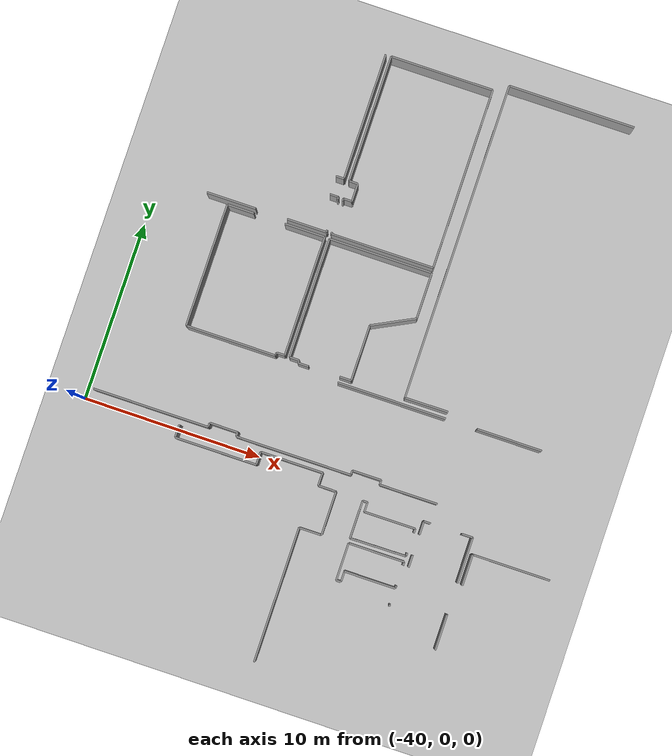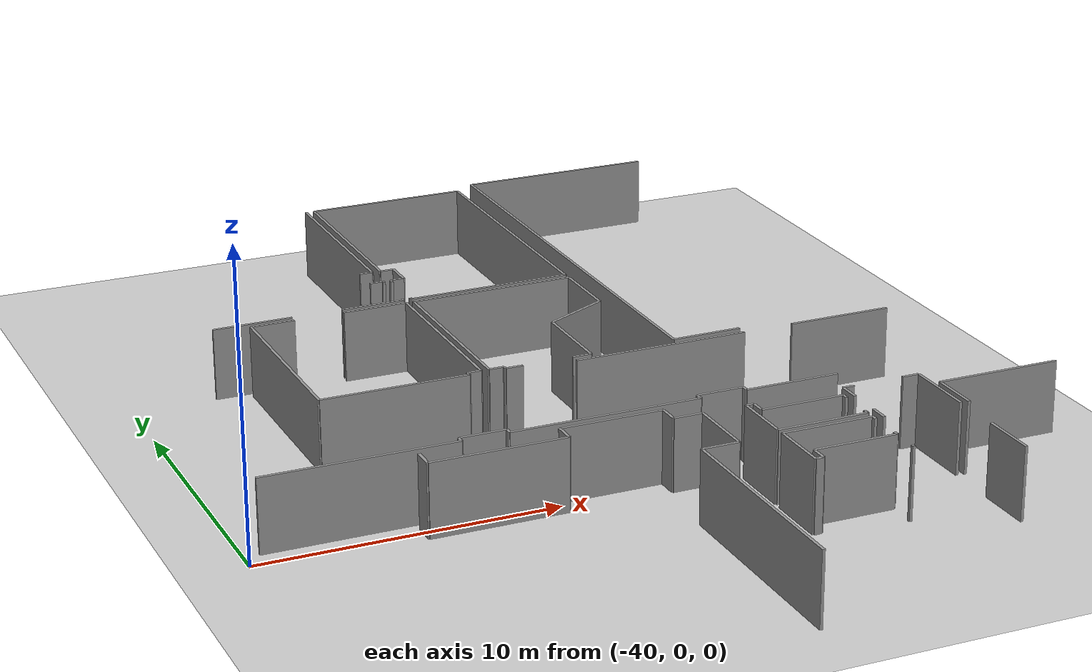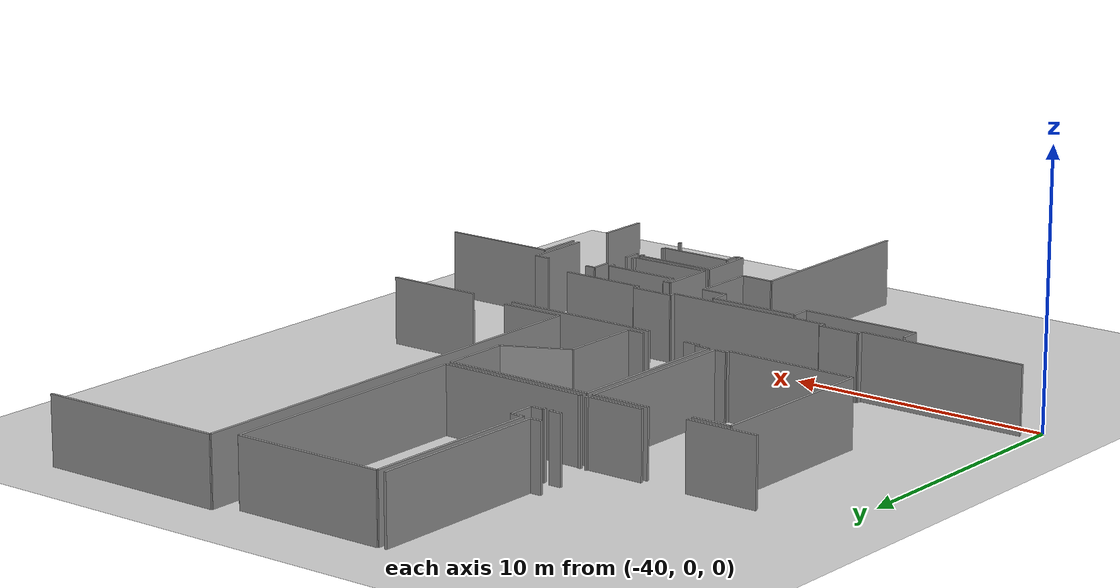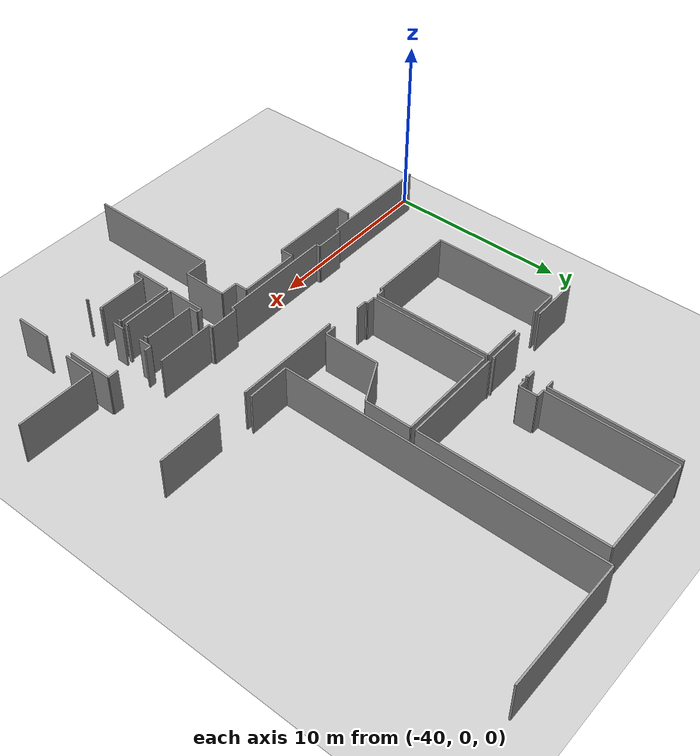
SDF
<sdf version="1.6">
 <world name="default">
  <model name="ground_plane">
   <static>1</static>
   <link name="link">
    <collision name="collision">
     <geometry><plane><normal>0 0 1</normal><size>100 100</size></plane></geometry>
     <surface><friction><ode><mu>100</mu><mu2>50</mu2></ode></friction></surface>
    </collision>
    <visual name="visual">
     <cast_shadows>0</cast_shadows>
     <geometry><plane><normal>0 0 1</normal><size>100 100</size></plane></geometry>
     <material>
      <script><uri>file://media/materials/scripts/gazebo.material</uri><name>Gazebo/Grey</name></script>
     </material>
    </visual>
   </link>
  </model>
  <model name="50057023">
   <static>1</static>
   <link name="Wall_26">
    <collision name="Wall_26_Collision">
     <geometry><box><size>0.469570441269 0.1 2.5</size></box></geometry>
     <pose>0.234785220635 0 1.25 0 0 0</pose>
    </collision>
    <visual name="Wall_26_Visual">
     <pose>0.234785220635 0 1.25 0 0 0</pose>
     <geometry><box><size>0.469570441269 0.1 2.5</size></box></geometry>
     <material>
      <script><uri>file://media/materials/scripts/gazebo.material</uri><name>Gazebo/Grey</name></script>
      <ambient>1 1 1 1</ambient>
     </material>
    </visual>
    <pose>25.0538960405 -8.60891816293 0 0 0 0.0</pose>
   </link>
   <link name="Wall_27">
    <collision name="Wall_27_Collision">
     <geometry><box><size>0.1259792223 0.1 2.5</size></box></geometry>
     <pose>0.06298961115 0 1.25 0 0 0</pose>
    </collision>
    <visual name="Wall_27_Visual">
     <pose>0.06298961115 0 1.25 0 0 0</pose>
     <geometry><box><size>0.1259792223 0.1 2.5</size></box></geometry>
     <material>
      <script><uri>file://media/materials/scripts/gazebo.material</uri><name>Gazebo/Grey</name></script>
      <ambient>1 1 1 1</ambient>
     </material>
    </visual>
    <pose>25.5234664818 -8.60891816293 0 0 0 -1.57079632679</pose>
   </link>
   <link name="Wall_28">
    <collision name="Wall_28_Collision">
     <geometry><box><size>0.12610596196 0.1 2.5</size></box></geometry>
     <pose>0.0630529809802 0 1.25 0 0 0</pose>
    </collision>
    <visual name="Wall_28_Visual">
     <pose>0.0630529809802 0 1.25 0 0 0</pose>
     <geometry><box><size>0.12610596196 0.1 2.5</size></box></geometry>
     <material>
      <script><uri>file://media/materials/scripts/gazebo.material</uri><name>Gazebo/Grey</name></script>
      <ambient>1 1 1 1</ambient>
     </material>
    </visual>
    <pose>25.5234664818 -10.4807362053 0 0 0 -1.57079632679</pose>
   </link>
   <link name="Wall_29">
    <collision name="Wall_29_Collision">
     <geometry><box><size>2.21654991832 0.1 2.5</size></box></geometry>
     <pose>1.10827495916 0 1.25 0 0 0</pose>
    </collision>
    <visual name="Wall_29_Visual">
     <pose>1.10827495916 0 1.25 0 0 0</pose>
     <geometry><box><size>2.21654991832 0.1 2.5</size></box></geometry>
     <material>
      <script><uri>file://media/materials/scripts/gazebo.material</uri><name>Gazebo/Grey</name></script>
      <ambient>1 1 1 1</ambient>
     </material>
    </visual>
    <pose>25.5234664818 -10.6068421673 0 0 0 3.14159265359</pose>
   </link>
   <link name="Wall_30">
    <collision name="Wall_30_Collision">
     <geometry><box><size>2.7690080974 0.1 2.5</size></box></geometry>
     <pose>1.3845040487 0 1.25 0 0 0</pose>
    </collision>
    <visual name="Wall_30_Visual">
     <pose>1.3845040487 0 1.25 0 0 0</pose>
     <geometry><box><size>2.7690080974 0.1 2.5</size></box></geometry>
     <material>
      <script><uri>file://media/materials/scripts/gazebo.material</uri><name>Gazebo/Grey</name></script>
      <ambient>1 1 1 1</ambient>
     </material>
    </visual>
    <pose>21.5349693734 -10.6068421673 0 0 0 3.14159265359</pose>
   </link>
   <link name="Wall_45">
    <collision name="Wall_45_Collision">
     <geometry><box><size>7.07676241003 0.1 2.5</size></box></geometry>
     <pose>3.53838120502 0 1.25 0 0 0</pose>
    </collision>
    <visual name="Wall_45_Visual">
     <pose>3.53838120502 0 1.25 0 0 0</pose>
     <geometry><box><size>7.07676241003 0.1 2.5</size></box></geometry>
     <material>
      <script><uri>file://media/materials/scripts/gazebo.material</uri><name>Gazebo/Grey</name></script>
      <ambient>1 1 1 1</ambient>
     </material>
    </visual>
    <pose>25.4986255084 -0.502902971918 0 0 0 -1.57079632679</pose>
   </link>
   <link name="Wall_46">
    <collision name="Wall_46_Collision">
     <geometry><box><size>0.453221025096 0.1 2.5</size></box></geometry>
     <pose>0.226610512548 0 1.25 0 0 0</pose>
    </collision>
    <visual name="Wall_46_Visual">
     <pose>0.226610512548 0 1.25 0 0 0</pose>
     <geometry><box><size>0.453221025096 0.1 2.5</size></box></geometry>
     <material>
      <script><uri>file://media/materials/scripts/gazebo.material</uri><name>Gazebo/Grey</name></script>
      <ambient>1 1 1 1</ambient>
     </material>
    </visual>
    <pose>25.4986255084 -7.57966538195 0 0 0 3.14159265359</pose>
   </link>
   <link name="Wall_48">
    <collision name="Wall_48_Collision">
     <geometry><box><size>7.09513966077 0.1 2.5</size></box></geometry>
     <pose>3.54756983038 0 1.25 0 0 0</pose>
    </collision>
    <visual name="Wall_48_Visual">
     <pose>3.54756983038 0 1.25 0 0 0</pose>
     <geometry><box><size>7.09513966077 0.1 2.5</size></box></geometry>
     <material>
      <script><uri>file://media/materials/scripts/gazebo.material</uri><name>Gazebo/Grey</name></script>
      <ambient>1 1 1 1</ambient>
     </material>
    </visual>
    <pose>25.8064761432 -7.5951276205 0 0 0 1.57079632679</pose>
   </link>
   <link name="Wall_49">
    <collision name="Wall_49_Collision">
     <geometry><box><size>5.75309339826 0.1 2.5</size></box></geometry>
     <pose>2.87654669913 0 1.25 0 0 0</pose>
    </collision>
    <visual name="Wall_49_Visual">
     <pose>2.87654669913 0 1.25 0 0 0</pose>
     <geometry><box><size>5.75309339826 0.1 2.5</size></box></geometry>
     <material>
      <script><uri>file://media/materials/scripts/gazebo.material</uri><name>Gazebo/Grey</name></script>
      <ambient>1 1 1 1</ambient>
     </material>
    </visual>
    <pose>25.8064761432 -0.499987959732 0 0 0 0.0</pose>
   </link>
   <link name="Wall_50">
    <collision name="Wall_50_Collision">
     <geometry><box><size>10.111163356 0.1 2.5</size></box></geometry>
     <pose>5.05558167801 0 1.25 0 0 0</pose>
    </collision>
    <visual name="Wall_50_Visual">
     <pose>5.05558167801 0 1.25 0 0 0</pose>
     <geometry><box><size>10.111163356 0.1 2.5</size></box></geometry>
     <material>
      <script><uri>file://media/materials/scripts/gazebo.material</uri><name>Gazebo/Grey</name></script>
      <ambient>1 1 1 1</ambient>
     </material>
    </visual>
    <pose>31.5595695414 -0.499987959732 0 0 0 -1.57079632679</pose>
   </link>
   <link name="Wall_51">
    <collision name="Wall_51_Collision">
     <geometry><box><size>5.74840403083 0.1 2.5</size></box></geometry>
     <pose>2.87420201541 0 1.25 0 0 0</pose>
    </collision>
    <visual name="Wall_51_Visual">
     <pose>2.87420201541 0 1.25 0 0 0</pose>
     <geometry><box><size>5.74840403083 0.1 2.5</size></box></geometry>
     <material>
      <script><uri>file://media/materials/scripts/gazebo.material</uri><name>Gazebo/Grey</name></script>
      <ambient>1 1 1 1</ambient>
     </material>
    </visual>
    <pose>31.5595695414 -10.6111513157 0 0 0 3.14159265359</pose>
   </link>
   <link name="Wall_52">
    <collision name="Wall_52_Collision">
     <geometry><box><size>0.100377810927 0.1 2.5</size></box></geometry>
     <pose>0.0501889054636 0 1.25 0 0 0</pose>
    </collision>
    <visual name="Wall_52_Visual">
     <pose>0.0501889054636 0 1.25 0 0 0</pose>
     <geometry><box><size>0.100377810927 0.1 2.5</size></box></geometry>
     <material>
      <script><uri>file://media/materials/scripts/gazebo.material</uri><name>Gazebo/Grey</name></script>
      <ambient>1 1 1 1</ambient>
     </material>
    </visual>
    <pose>25.8111655106 -10.6111513157 0 0 0 1.57079632679</pose>
   </link>
   <link name="Wall_53">
    <collision name="Wall_53_Collision">
     <geometry><box><size>0.141694940173 0.1 2.5</size></box></geometry>
     <pose>0.0708474700863 0 1.25 0 0 0</pose>
    </collision>
    <visual name="Wall_53_Visual">
     <pose>0.0708474700863 0 1.25 0 0 0</pose>
     <geometry><box><size>0.141694940173 0.1 2.5</size></box></geometry>
     <material>
      <script><uri>file://media/materials/scripts/gazebo.material</uri><name>Gazebo/Grey</name></script>
      <ambient>1 1 1 1</ambient>
     </material>
    </visual>
    <pose>25.8111655106 -8.74452959941 0 0 0 1.57079632679</pose>
   </link>
   <link name="Wall_54">
    <collision name="Wall_54_Collision">
     <geometry><box><size>0.479836353751 0.1 2.5</size></box></geometry>
     <pose>0.239918176875 0 1.25 0 0 0</pose>
    </collision>
    <visual name="Wall_54_Visual">
     <pose>0.239918176875 0 1.25 0 0 0</pose>
     <geometry><box><size>0.479836353751 0.1 2.5</size></box></geometry>
     <material>
      <script><uri>file://media/materials/scripts/gazebo.material</uri><name>Gazebo/Grey</name></script>
      <ambient>1 1 1 1</ambient>
     </material>
    </visual>
    <pose>25.8111655106 -8.60283465924 0 0 0 0.0</pose>
   </link>
   <link name="Wall_55">
    <collision name="Wall_55_Collision">
     <geometry><box><size>0.999975919465 0.1 2.5</size></box></geometry>
     <pose>0.499987959732 0 1.25 0 0 0</pose>
    </collision>
    <visual name="Wall_55_Visual">
     <pose>0.499987959732 0 1.25 0 0 0</pose>
     <geometry><box><size>0.999975919465 0.1 2.5</size></box></geometry>
     <material>
      <script><uri>file://media/materials/scripts/gazebo.material</uri><name>Gazebo/Grey</name></script>
      <ambient>1 1 1 1</ambient>
     </material>
    </visual>
    <pose>26.2910018643 -8.60283465924 0 0 0 1.57079632679</pose>
   </link>
   <link name="Wall_56">
    <collision name="Wall_56_Collision">
     <geometry><box><size>0.484587396339 0.1 2.5</size></box></geometry>
     <pose>0.242293698169 0 1.25 0 0 0</pose>
    </collision>
    <visual name="Wall_56_Visual">
     <pose>0.242293698169 0 1.25 0 0 0</pose>
     <geometry><box><size>0.484587396339 0.1 2.5</size></box></geometry>
     <material>
      <script><uri>file://media/materials/scripts/gazebo.material</uri><name>Gazebo/Grey</name></script>
      <ambient>1 1 1 1</ambient>
     </material>
    </visual>
    <pose>26.2910018643 -7.60285873978 0 0 0 3.12563795204</pose>
   </link>
   <link name="Wall_57">
    <collision name="Wall_57_Collision">
     <geometry><box><size>6.86472695841 0.1 2.5</size></box></geometry>
     <pose>3.43236347921 0 1.25 0 0 0</pose>
    </collision>
    <visual name="Wall_57_Visual">
     <pose>3.43236347921 0 1.25 0 0 0</pose>
     <geometry><box><size>6.86472695841 0.1 2.5</size></box></geometry>
     <material>
      <script><uri>file://media/materials/scripts/gazebo.material</uri><name>Gazebo/Grey</name></script>
      <ambient>1 1 1 1</ambient>
     </material>
    </visual>
    <pose>20.0091506035 -17.7463407092 0 0 0 1.57079632679</pose>
   </link>
   <link name="Wall_58">
    <collision name="Wall_58_Collision">
     <geometry><box><size>1.51808765061 0.1 2.5</size></box></geometry>
     <pose>0.759043825307 0 1.25 0 0 0</pose>
    </collision>
    <visual name="Wall_58_Visual">
     <pose>0.759043825307 0 1.25 0 0 0</pose>
     <geometry><box><size>1.51808765061 0.1 2.5</size></box></geometry>
     <material>
      <script><uri>file://media/materials/scripts/gazebo.material</uri><name>Gazebo/Grey</name></script>
      <ambient>1 1 1 1</ambient>
     </material>
    </visual>
    <pose>20.0091506035 -10.8816137507 0 0 0 0.0</pose>
   </link>
   <link name="Wall_59">
    <collision name="Wall_59_Collision">
     <geometry><box><size>2.25203702319 0.1 2.5</size></box></geometry>
     <pose>1.12601851159 0 1.25 0 0 0</pose>
    </collision>
    <visual name="Wall_59_Visual">
     <pose>1.12601851159 0 1.25 0 0 0</pose>
     <geometry><box><size>2.25203702319 0.1 2.5</size></box></geometry>
     <material>
      <script><uri>file://media/materials/scripts/gazebo.material</uri><name>Gazebo/Grey</name></script>
      <ambient>1 1 1 1</ambient>
     </material>
    </visual>
    <pose>23.2714294586 -10.8816137507 0 0 0 0.0</pose>
   </link>
   <link name="Wall_60">
    <collision name="Wall_60_Collision">
     <geometry><box><size>6.69869800347 0.1 2.5</size></box></geometry>
     <pose>3.34934900174 0 1.25 0 0 0</pose>
    </collision>
    <visual name="Wall_60_Visual">
     <pose>3.34934900174 0 1.25 0 0 0</pose>
     <geometry><box><size>6.69869800347 0.1 2.5</size></box></geometry>
     <material>
      <script><uri>file://media/materials/scripts/gazebo.material</uri><name>Gazebo/Grey</name></script>
      <ambient>1 1 1 1</ambient>
     </material>
    </visual>
    <pose>25.5234664818 -10.8816137507 0 0 0 -1.57079632679</pose>
   </link>
   <link name="Wall_61">
    <collision name="Wall_61_Collision">
     <geometry><box><size>0.469570441269 0.1 2.5</size></box></geometry>
     <pose>0.234785220635 0 1.25 0 0 0</pose>
    </collision>
    <visual name="Wall_61_Visual">
     <pose>0.234785220635 0 1.25 0 0 0</pose>
     <geometry><box><size>0.469570441269 0.1 2.5</size></box></geometry>
     <material>
      <script><uri>file://media/materials/scripts/gazebo.material</uri><name>Gazebo/Grey</name></script>
      <ambient>1 1 1 1</ambient>
     </material>
    </visual>
    <pose>25.5234664818 -17.5803117542 0 0 0 3.14159265359</pose>
   </link>
   <link name="Wall_62">
    <collision name="Wall_62_Collision">
     <geometry><box><size>0.172619417276 0.1 2.5</size></box></geometry>
     <pose>0.0863097086382 0 1.25 0 0 0</pose>
    </collision>
    <visual name="Wall_62_Visual">
     <pose>0.0863097086382 0 1.25 0 0 0</pose>
     <geometry><box><size>0.172619417276 0.1 2.5</size></box></geometry>
     <material>
      <script><uri>file://media/materials/scripts/gazebo.material</uri><name>Gazebo/Grey</name></script>
      <ambient>1 1 1 1</ambient>
     </material>
    </visual>
    <pose>25.0538960405 -17.5803117542 0 0 0 -1.57079632679</pose>
   </link>
   <link name="Wall_63">
    <collision name="Wall_63_Collision">
     <geometry><box><size>5.04474974195 0.1 2.5</size></box></geometry>
     <pose>2.52237487097 0 1.25 0 0 0</pose>
    </collision>
    <visual name="Wall_63_Visual">
     <pose>2.52237487097 0 1.25 0 0 0</pose>
     <geometry><box><size>5.04474974195 0.1 2.5</size></box></geometry>
     <material>
      <script><uri>file://media/materials/scripts/gazebo.material</uri><name>Gazebo/Grey</name></script>
      <ambient>1 1 1 1</ambient>
     </material>
    </visual>
    <pose>25.0538960405 -17.7529311715 0 0 0 3.14028625297</pose>
   </link>
   <link name="Wall_64">
    <collision name="Wall_64_Collision">
     <geometry><box><size>6.70706282105 0.1 2.5</size></box></geometry>
     <pose>3.35353141052 0 1.25 0 0 0</pose>
    </collision>
    <visual name="Wall_64_Visual">
     <pose>3.35353141052 0 1.25 0 0 0</pose>
     <geometry><box><size>6.70706282105 0.1 2.5</size></box></geometry>
     <material>
      <script><uri>file://media/materials/scripts/gazebo.material</uri><name>Gazebo/Grey</name></script>
      <ambient>1 1 1 1</ambient>
     </material>
    </visual>
    <pose>25.7982380652 -17.5972948687 0 0 0 1.57079632679</pose>
   </link>
   <link name="Wall_65">
    <collision name="Wall_65_Collision">
     <geometry><box><size>5.78008894589 0.1 2.5</size></box></geometry>
     <pose>2.89004447295 0 1.25 0 0 0</pose>
    </collision>
    <visual name="Wall_65_Visual">
     <pose>2.89004447295 0 1.25 0 0 0</pose>
     <geometry><box><size>5.78008894589 0.1 2.5</size></box></geometry>
     <material>
      <script><uri>file://media/materials/scripts/gazebo.material</uri><name>Gazebo/Grey</name></script>
      <ambient>1 1 1 1</ambient>
     </material>
    </visual>
    <pose>25.7982380652 -10.8902320476 0 0 0 0.0</pose>
   </link>
   <link name="Wall_66">
    <collision name="Wall_66_Collision">
     <geometry><box><size>2.58371471409 0.1 2.5</size></box></geometry>
     <pose>1.29185735705 0 1.25 0 0 0</pose>
    </collision>
    <visual name="Wall_66_Visual">
     <pose>1.29185735705 0 1.25 0 0 0</pose>
     <geometry><box><size>2.58371471409 0.1 2.5</size></box></geometry>
     <material>
      <script><uri>file://media/materials/scripts/gazebo.material</uri><name>Gazebo/Grey</name></script>
      <ambient>1 1 1 1</ambient>
     </material>
    </visual>
    <pose>31.5783270111 -10.8902320476 0 0 0 -1.57079632679</pose>
   </link>
   <link name="Wall_67">
    <collision name="Wall_67_Collision">
     <geometry><box><size>2.52998225674 0.1 2.5</size></box></geometry>
     <pose>1.26499112837 0 1.25 0 0 0</pose>
    </collision>
    <visual name="Wall_67_Visual">
     <pose>1.26499112837 0 1.25 0 0 0</pose>
     <geometry><box><size>2.52998225674 0.1 2.5</size></box></geometry>
     <material>
      <script><uri>file://media/materials/scripts/gazebo.material</uri><name>Gazebo/Grey</name></script>
      <ambient>1 1 1 1</ambient>
     </material>
    </visual>
    <pose>31.5783270111 -13.4739467617 0 0 0 -2.67330756551</pose>
   </link>
   <link name="Wall_68">
    <collision name="Wall_68_Collision">
     <geometry><box><size>3.12324544783 0.1 2.5</size></box></geometry>
     <pose>1.56162272391 0 1.25 0 0 0</pose>
    </collision>
    <visual name="Wall_68_Visual">
     <pose>1.56162272391 0 1.25 0 0 0</pose>
     <geometry><box><size>3.12324544783 0.1 2.5</size></box></geometry>
     <material>
      <script><uri>file://media/materials/scripts/gazebo.material</uri><name>Gazebo/Grey</name></script>
      <ambient>1 1 1 1</ambient>
     </material>
    </visual>
    <pose>29.3207134429 -14.6158711007 0 0 0 -1.57079632679</pose>
   </link>
   <link name="Wall_69">
    <collision name="Wall_69_Collision">
     <geometry><box><size>0.652202291707 0.1 2.5</size></box></geometry>
     <pose>0.326101145853 0 1.25 0 0 0</pose>
    </collision>
    <visual name="Wall_69_Visual">
     <pose>0.326101145853 0 1.25 0 0 0</pose>
     <geometry><box><size>0.652202291707 0.1 2.5</size></box></geometry>
     <material>
      <script><uri>file://media/materials/scripts/gazebo.material</uri><name>Gazebo/Grey</name></script>
      <ambient>1 1 1 1</ambient>
     </material>
    </visual>
    <pose>29.3207134429 -17.7391165485 0 0 0 3.14159265359</pose>
   </link>
   <link name="Wall_70">
    <collision name="Wall_70_Collision">
     <geometry><box><size>0.594282266967 0.1 2.5</size></box></geometry>
     <pose>0.297141133483 0 1.25 0 0 0</pose>
    </collision>
    <visual name="Wall_70_Visual">
     <pose>0.297141133483 0 1.25 0 0 0</pose>
     <geometry><box><size>0.594282266967 0.1 2.5</size></box></geometry>
     <material>
      <script><uri>file://media/materials/scripts/gazebo.material</uri><name>Gazebo/Grey</name></script>
      <ambient>1 1 1 1</ambient>
     </material>
    </visual>
    <pose>26.9149412118 -17.7391165485 0 0 0 3.14159265359</pose>
   </link>
   <link name="Wall_71">
    <collision name="Wall_71_Collision">
     <geometry><box><size>0.144990171339 0.1 2.5</size></box></geometry>
     <pose>0.0724950856697 0 1.25 0 0 0</pose>
    </collision>
    <visual name="Wall_71_Visual">
     <pose>0.0724950856697 0 1.25 0 0 0</pose>
     <geometry><box><size>0.144990171339 0.1 2.5</size></box></geometry>
     <material>
      <script><uri>file://media/materials/scripts/gazebo.material</uri><name>Gazebo/Grey</name></script>
      <ambient>1 1 1 1</ambient>
     </material>
    </visual>
    <pose>26.3206589448 -17.7391165485 0 0 0 1.57079632679</pose>
   </link>
   <link name="Wall_72">
    <collision name="Wall_72_Collision">
     <geometry><box><size>0.522430487988 0.1 2.5</size></box></geometry>
     <pose>0.261215243994 0 1.25 0 0 0</pose>
    </collision>
    <visual name="Wall_72_Visual">
     <pose>0.261215243994 0 1.25 0 0 0</pose>
     <geometry><box><size>0.522430487988 0.1 2.5</size></box></geometry>
     <material>
      <script><uri>file://media/materials/scripts/gazebo.material</uri><name>Gazebo/Grey</name></script>
      <ambient>1 1 1 1</ambient>
     </material>
    </visual>
    <pose>26.3206589448 -17.5941263772 0 0 0 -3.13552771097</pose>
   </link>
   <link name="Wall_73">
    <collision name="Wall_73_Collision">
     <geometry><box><size>17.6953913657 0.1 2.5</size></box></geometry>
     <pose>8.84769568287 0 1.25 0 0 0</pose>
    </collision>
    <visual name="Wall_73_Visual">
     <pose>8.84769568287 0 1.25 0 0 0</pose>
     <geometry><box><size>17.6953913657 0.1 2.5</size></box></geometry>
     <material>
      <script><uri>file://media/materials/scripts/gazebo.material</uri><name>Gazebo/Grey</name></script>
      <ambient>1 1 1 1</ambient>
     </material>
    </visual>
    <pose>32.3276118826 -17.6953913657 0 0 0 1.57079632679</pose>
   </link>
   <link name="Wall_74">
    <collision name="Wall_74_Collision">
     <geometry><box><size>7.0832261327 0.1 2.5</size></box></geometry>
     <pose>3.54161306635 0 1.25 0 0 0</pose>
    </collision>
    <visual name="Wall_74_Visual">
     <pose>3.54161306635 0 1.25 0 0 0</pose>
     <geometry><box><size>7.0832261327 0.1 2.5</size></box></geometry>
     <material>
      <script><uri>file://media/materials/scripts/gazebo.material</uri><name>Gazebo/Grey</name></script>
      <ambient>1 1 1 1</ambient>
     </material>
    </visual>
    <pose>32.3276118826 -0.0 0 0 0 0.0</pose>
   </link>
   <link name="Wall_81">
    <collision name="Wall_81_Collision">
     <geometry><box><size>2.43293970809 0.1 2.5</size></box></geometry>
     <pose>1.21646985404 0 1.25 0 0 0</pose>
    </collision>
    <visual name="Wall_81_Visual">
     <pose>1.21646985404 0 1.25 0 0 0</pose>
     <geometry><box><size>2.43293970809 0.1 2.5</size></box></geometry>
     <material>
      <script><uri>file://media/materials/scripts/gazebo.material</uri><name>Gazebo/Grey</name></script>
      <ambient>1 1 1 1</ambient>
     </material>
    </visual>
    <pose>34.760506401 -17.6805628255 0 0 0 -3.13549770927</pose>
   </link>
   <link name="Wall_114">
    <collision name="Wall_114_Collision">
     <geometry><box><size>6.08375717188 0.1 2.5</size></box></geometry>
     <pose>3.04187858594 0 1.25 0 0 0</pose>
    </collision>
    <visual name="Wall_114_Visual">
     <pose>3.04187858594 0 1.25 0 0 0</pose>
     <geometry><box><size>6.08375717188 0.1 2.5</size></box></geometry>
     <material>
      <script><uri>file://media/materials/scripts/gazebo.material</uri><name>Gazebo/Grey</name></script>
      <ambient>1 1 1 1</ambient>
     </material>
    </visual>
    <pose>28.6685111512 -18.0611620252 0 0 0 0.0</pose>
   </link>
   <link name="Wall_115">
    <collision name="Wall_115_Collision">
     <geometry><box><size>3.64008978238 0.1 2.5</size></box></geometry>
     <pose>1.82004489119 0 1.25 0 0 0</pose>
    </collision>
    <visual name="Wall_115_Visual">
     <pose>1.82004489119 0 1.25 0 0 0</pose>
     <geometry><box><size>3.64008978238 0.1 2.5</size></box></geometry>
     <material>
      <script><uri>file://media/materials/scripts/gazebo.material</uri><name>Gazebo/Grey</name></script>
      <ambient>1 1 1 1</ambient>
     </material>
    </visual>
    <pose>36.5229481166 -18.0611620252 0 0 0 0.0</pose>
   </link>
   <link name="Wall_152">
    <collision name="Wall_152_Collision">
     <geometry><box><size>3.23832505935 0.1 2.5</size></box></geometry>
     <pose>1.61916252967 0 1.25 0 0 0</pose>
    </collision>
    <visual name="Wall_152_Visual">
     <pose>1.61916252967 0 1.25 0 0 0</pose>
     <geometry><box><size>3.23832505935 0.1 2.5</size></box></geometry>
     <material>
      <script><uri>file://media/materials/scripts/gazebo.material</uri><name>Gazebo/Grey</name></script>
      <ambient>1 1 1 1</ambient>
     </material>
    </visual>
    <pose>35.7668193035 -22.5217643682 0 0 0 3.14159265359</pose>
   </link>
   <link name="Wall_153">
    <collision name="Wall_153_Collision">
     <geometry><box><size>0.249550391055 0.1 2.5</size></box></geometry>
     <pose>0.124775195528 0 1.25 0 0 0</pose>
    </collision>
    <visual name="Wall_153_Visual">
     <pose>0.124775195528 0 1.25 0 0 0</pose>
     <geometry><box><size>0.249550391055 0.1 2.5</size></box></geometry>
     <material>
      <script><uri>file://media/materials/scripts/gazebo.material</uri><name>Gazebo/Grey</name></script>
      <ambient>1 1 1 1</ambient>
     </material>
    </visual>
    <pose>32.5284942441 -22.5217643682 0 0 0 1.57079632679</pose>
   </link>
   <link name="Wall_154">
    <collision name="Wall_154_Collision">
     <geometry><box><size>1.62188743237 0.1 2.5</size></box></geometry>
     <pose>0.810943716184 0 1.25 0 0 0</pose>
    </collision>
    <visual name="Wall_154_Visual">
     <pose>0.810943716184 0 1.25 0 0 0</pose>
     <geometry><box><size>1.62188743237 0.1 2.5</size></box></geometry>
     <material>
      <script><uri>file://media/materials/scripts/gazebo.material</uri><name>Gazebo/Grey</name></script>
      <ambient>1 1 1 1</ambient>
     </material>
    </visual>
    <pose>32.5284942441 -22.2722139771 0 0 0 3.14159265359</pose>
   </link>
   <link name="Wall_155">
    <collision name="Wall_155_Collision">
     <geometry><box><size>0.246635378869 0.1 2.5</size></box></geometry>
     <pose>0.123317689435 0 1.25 0 0 0</pose>
    </collision>
    <visual name="Wall_155_Visual">
     <pose>0.123317689435 0 1.25 0 0 0</pose>
     <geometry><box><size>0.246635378869 0.1 2.5</size></box></geometry>
     <material>
      <script><uri>file://media/materials/scripts/gazebo.material</uri><name>Gazebo/Grey</name></script>
      <ambient>1 1 1 1</ambient>
     </material>
    </visual>
    <pose>30.9066068117 -22.2722139771 0 0 0 -1.57079632679</pose>
   </link>
   <link name="Wall_156">
    <collision name="Wall_156_Collision">
     <geometry><box><size>6.46207505776 0.1 2.5</size></box></geometry>
     <pose>3.23103752888 0 1.25 0 0 0</pose>
    </collision>
    <visual name="Wall_156_Visual">
     <pose>3.23103752888 0 1.25 0 0 0</pose>
     <geometry><box><size>6.46207505776 0.1 2.5</size></box></geometry>
     <material>
      <script><uri>file://media/materials/scripts/gazebo.material</uri><name>Gazebo/Grey</name></script>
      <ambient>1 1 1 1</ambient>
     </material>
    </visual>
    <pose>30.9066068117 -22.518849356 0 0 0 3.14159265359</pose>
   </link>
   <link name="Wall_157">
    <collision name="Wall_157_Collision">
     <geometry><box><size>0.238017081971 0.1 2.5</size></box></geometry>
     <pose>0.119008540986 0 1.25 0 0 0</pose>
    </collision>
    <visual name="Wall_157_Visual">
     <pose>0.119008540986 0 1.25 0 0 0</pose>
     <geometry><box><size>0.238017081971 0.1 2.5</size></box></geometry>
     <material>
      <script><uri>file://media/materials/scripts/gazebo.material</uri><name>Gazebo/Grey</name></script>
      <ambient>1 1 1 1</ambient>
     </material>
    </visual>
    <pose>24.444531754 -22.518849356 0 0 0 1.57079632679</pose>
   </link>
   <link name="Wall_158">
    <collision name="Wall_158_Collision">
     <geometry><box><size>1.57157178724 0.1 2.5</size></box></geometry>
     <pose>0.785785893622 0 1.25 0 0 0</pose>
    </collision>
    <visual name="Wall_158_Visual">
     <pose>0.785785893622 0 1.25 0 0 0</pose>
     <geometry><box><size>1.57157178724 0.1 2.5</size></box></geometry>
     <material>
      <script><uri>file://media/materials/scripts/gazebo.material</uri><name>Gazebo/Grey</name></script>
      <ambient>1 1 1 1</ambient>
     </material>
    </visual>
    <pose>24.444531754 -22.280832274 0 0 0 3.14159265359</pose>
   </link>
   <link name="Wall_159">
    <collision name="Wall_159_Collision">
     <geometry><box><size>0.240805354497 0.1 2.5</size></box></geometry>
     <pose>0.120402677249 0 1.25 0 0 0</pose>
    </collision>
    <visual name="Wall_159_Visual">
     <pose>0.120402677249 0 1.25 0 0 0</pose>
     <geometry><box><size>0.240805354497 0.1 2.5</size></box></geometry>
     <material>
      <script><uri>file://media/materials/scripts/gazebo.material</uri><name>Gazebo/Grey</name></script>
      <ambient>1 1 1 1</ambient>
     </material>
    </visual>
    <pose>22.8729599667 -22.280832274 0 0 0 -1.57079632679</pose>
   </link>
   <link name="Wall_160">
    <collision name="Wall_160_Collision">
     <geometry><box><size>6.47639663937 0.1 2.5</size></box></geometry>
     <pose>3.23819831969 0 1.25 0 0 0</pose>
    </collision>
    <visual name="Wall_160_Visual">
     <pose>3.23819831969 0 1.25 0 0 0</pose>
     <geometry><box><size>6.47639663937 0.1 2.5</size></box></geometry>
     <material>
      <script><uri>file://media/materials/scripts/gazebo.material</uri><name>Gazebo/Grey</name></script>
      <ambient>1 1 1 1</ambient>
     </material>
    </visual>
    <pose>22.8729599667 -22.5216376285 0 0 0 3.14159265359</pose>
   </link>
   <link name="Wall_228">
    <collision name="Wall_228_Collision">
     <geometry><box><size>0.717473216741 0.1 2.5</size></box></geometry>
     <pose>0.358736608371 0 1.25 0 0 0</pose>
    </collision>
    <visual name="Wall_228_Visual">
     <pose>0.358736608371 0 1.25 0 0 0</pose>
     <geometry><box><size>0.717473216741 0.1 2.5</size></box></geometry>
     <material>
      <script><uri>file://media/materials/scripts/gazebo.material</uri><name>Gazebo/Grey</name></script>
      <ambient>1 1 1 1</ambient>
     </material>
    </visual>
    <pose>21.3641243113 -22.8839863172 0 0 0 -1.57079632679</pose>
   </link>
   <link name="Wall_229">
    <collision name="Wall_229_Collision">
     <geometry><box><size>4.57973762356 0.1 2.5</size></box></geometry>
     <pose>2.28986881178 0 1.25 0 0 0</pose>
    </collision>
    <visual name="Wall_229_Visual">
     <pose>2.28986881178 0 1.25 0 0 0</pose>
     <geometry><box><size>4.57973762356 0.1 2.5</size></box></geometry>
     <material>
      <script><uri>file://media/materials/scripts/gazebo.material</uri><name>Gazebo/Grey</name></script>
      <ambient>1 1 1 1</ambient>
     </material>
    </visual>
    <pose>21.3641243113 -23.6014595339 0 0 0 0.0</pose>
   </link>
   <link name="Wall_230">
    <collision name="Wall_230_Collision">
     <geometry><box><size>0.717473216741 0.1 2.5</size></box></geometry>
     <pose>0.358736608371 0 1.25 0 0 0</pose>
    </collision>
    <visual name="Wall_230_Visual">
     <pose>0.358736608371 0 1.25 0 0 0</pose>
     <geometry><box><size>0.717473216741 0.1 2.5</size></box></geometry>
     <material>
      <script><uri>file://media/materials/scripts/gazebo.material</uri><name>Gazebo/Grey</name></script>
      <ambient>1 1 1 1</ambient>
     </material>
    </visual>
    <pose>25.9438619349 -23.6014595339 0 0 0 1.57079632679</pose>
   </link>
   <link name="Wall_231">
    <collision name="Wall_231_Collision">
     <geometry><box><size>3.49281829715 0.1 2.5</size></box></geometry>
     <pose>1.74640914858 0 1.25 0 0 0</pose>
    </collision>
    <visual name="Wall_231_Visual">
     <pose>1.74640914858 0 1.25 0 0 0</pose>
     <geometry><box><size>3.49281829715 0.1 2.5</size></box></geometry>
     <material>
      <script><uri>file://media/materials/scripts/gazebo.material</uri><name>Gazebo/Grey</name></script>
      <ambient>1 1 1 1</ambient>
     </material>
    </visual>
    <pose>25.9438619349 -22.8839863172 0 0 0 0.0</pose>
   </link>
   <link name="Wall_232">
    <collision name="Wall_232_Collision">
     <geometry><box><size>0.724697377376 0.1 2.5</size></box></geometry>
     <pose>0.362348688688 0 1.25 0 0 0</pose>
    </collision>
    <visual name="Wall_232_Visual">
     <pose>0.362348688688 0 1.25 0 0 0</pose>
     <geometry><box><size>0.724697377376 0.1 2.5</size></box></geometry>
     <material>
      <script><uri>file://media/materials/scripts/gazebo.material</uri><name>Gazebo/Grey</name></script>
      <ambient>1 1 1 1</ambient>
     </material>
    </visual>
    <pose>29.436680232 -22.8839863172 0 0 0 -1.57079632679</pose>
   </link>
   <link name="Wall_233">
    <collision name="Wall_233_Collision">
     <geometry><box><size>0.999975919465 0.1 2.5</size></box></geometry>
     <pose>0.499987959732 0 1.25 0 0 0</pose>
    </collision>
    <visual name="Wall_233_Visual">
     <pose>0.499987959732 0 1.25 0 0 0</pose>
     <geometry><box><size>0.999975919465 0.1 2.5</size></box></geometry>
     <material>
      <script><uri>file://media/materials/scripts/gazebo.material</uri><name>Gazebo/Grey</name></script>
      <ambient>1 1 1 1</ambient>
     </material>
    </visual>
    <pose>29.436680232 -23.6086836946 0 0 0 0.0</pose>
   </link>
   <link name="Wall_234">
    <collision name="Wall_234_Collision">
     <geometry><box><size>2.44201977392 0.1 2.5</size></box></geometry>
     <pose>1.22100988696 0 1.25 0 0 0</pose>
    </collision>
    <visual name="Wall_234_Visual">
     <pose>1.22100988696 0 1.25 0 0 0</pose>
     <geometry><box><size>2.44201977392 0.1 2.5</size></box></geometry>
     <material>
      <script><uri>file://media/materials/scripts/gazebo.material</uri><name>Gazebo/Grey</name></script>
      <ambient>1 1 1 1</ambient>
     </material>
    </visual>
    <pose>30.4366561515 -23.6086836946 0 0 0 -1.57079632679</pose>
   </link>
   <link name="Wall_235">
    <collision name="Wall_235_Collision">
     <geometry><box><size>1.25358197965 0.1 2.5</size></box></geometry>
     <pose>0.626790989824 0 1.25 0 0 0</pose>
    </collision>
    <visual name="Wall_235_Visual">
     <pose>0.626790989824 0 1.25 0 0 0</pose>
     <geometry><box><size>1.25358197965 0.1 2.5</size></box></geometry>
     <material>
      <script><uri>file://media/materials/scripts/gazebo.material</uri><name>Gazebo/Grey</name></script>
      <ambient>1 1 1 1</ambient>
     </material>
    </visual>
    <pose>30.4366561515 -26.0507034685 0 0 0 3.14159265359</pose>
   </link>
   <link name="Wall_236">
    <collision name="Wall_236_Collision">
     <geometry><box><size>7.5179431674 0.1 2.5</size></box></geometry>
     <pose>3.7589715837 0 1.25 0 0 0</pose>
    </collision>
    <visual name="Wall_236_Visual">
     <pose>3.7589715837 0 1.25 0 0 0</pose>
     <geometry><box><size>7.5179431674 0.1 2.5</size></box></geometry>
     <material>
      <script><uri>file://media/materials/scripts/gazebo.material</uri><name>Gazebo/Grey</name></script>
      <ambient>1 1 1 1</ambient>
     </material>
    </visual>
    <pose>29.1830741719 -26.0507034685 0 0 0 -1.57079632679</pose>
   </link>
   <link name="Wall_286">
    <collision name="Wall_286_Collision">
     <geometry><box><size>1.73848791981 0.1 2.5</size></box></geometry>
     <pose>0.869243959905 0 1.25 0 0 0</pose>
    </collision>
    <visual name="Wall_286_Visual">
     <pose>0.869243959905 0 1.25 0 0 0</pose>
     <geometry><box><size>1.73848791981 0.1 2.5</size></box></geometry>
     <material>
      <script><uri>file://media/materials/scripts/gazebo.material</uri><name>Gazebo/Grey</name></script>
      <ambient>1 1 1 1</ambient>
     </material>
    </visual>
    <pose>38.3997090057 -26.2092547835 0 0 0 1.57079632679</pose>
   </link>
   <link name="Wall_287">
    <collision name="Wall_287_Collision">
     <geometry><box><size>4.33551029823 0.1 2.5</size></box></geometry>
     <pose>2.16775514912 0 1.25 0 0 0</pose>
    </collision>
    <visual name="Wall_287_Visual">
     <pose>2.16775514912 0 1.25 0 0 0</pose>
     <geometry><box><size>4.33551029823 0.1 2.5</size></box></geometry>
     <material>
      <script><uri>file://media/materials/scripts/gazebo.material</uri><name>Gazebo/Grey</name></script>
      <ambient>1 1 1 1</ambient>
     </material>
    </visual>
    <pose>38.3997090057 -24.4707668637 0 0 0 0.0</pose>
   </link>
   <link name="Wall_305">
    <collision name="Wall_305_Collision">
     <geometry><box><size>2.10831424845 0.1 2.5</size></box></geometry>
     <pose>1.05415712423 0 1.25 0 0 0</pose>
    </collision>
    <visual name="Wall_305_Visual">
     <pose>1.05415712423 0 1.25 0 0 0</pose>
     <geometry><box><size>2.10831424845 0.1 2.5</size></box></geometry>
     <material>
      <script><uri>file://media/materials/scripts/gazebo.material</uri><name>Gazebo/Grey</name></script>
      <ambient>1 1 1 1</ambient>
     </material>
    </visual>
    <pose>31.9326911012 -25.7278975538 0 0 0 1.57079632679</pose>
   </link>
   <link name="Wall_306">
    <collision name="Wall_306_Collision">
     <geometry><box><size>0.275025062768 0.1 2.5</size></box></geometry>
     <pose>0.137512531384 0 1.25 0 0 0</pose>
    </collision>
    <visual name="Wall_306_Visual">
     <pose>0.137512531384 0 1.25 0 0 0</pose>
     <geometry><box><size>0.275025062768 0.1 2.5</size></box></geometry>
     <material>
      <script><uri>file://media/materials/scripts/gazebo.material</uri><name>Gazebo/Grey</name></script>
      <ambient>1 1 1 1</ambient>
     </material>
    </visual>
    <pose>31.9326911012 -23.6195833053 0 0 0 0.0</pose>
   </link>
   <link name="Wall_307">
    <collision name="Wall_307_Collision">
     <geometry><box><size>0.524955672804 0.1 2.5</size></box></geometry>
     <pose>0.262477836402 0 1.25 0 0 0</pose>
    </collision>
    <visual name="Wall_307_Visual">
     <pose>0.262477836402 0 1.25 0 0 0</pose>
     <geometry><box><size>0.524955672804 0.1 2.5</size></box></geometry>
     <material>
      <script><uri>file://media/materials/scripts/gazebo.material</uri><name>Gazebo/Grey</name></script>
      <ambient>1 1 1 1</ambient>
     </material>
    </visual>
    <pose>32.207716164 -23.6195833053 0 0 0 -1.57079632679</pose>
   </link>
   <link name="Wall_308">
    <collision name="Wall_308_Collision">
     <geometry><box><size>2.8665976358 0.1 2.5</size></box></geometry>
     <pose>1.4332988179 0 1.25 0 0 0</pose>
    </collision>
    <visual name="Wall_308_Visual">
     <pose>1.4332988179 0 1.25 0 0 0</pose>
     <geometry><box><size>2.8665976358 0.1 2.5</size></box></geometry>
     <material>
      <script><uri>file://media/materials/scripts/gazebo.material</uri><name>Gazebo/Grey</name></script>
      <ambient>1 1 1 1</ambient>
     </material>
    </visual>
    <pose>32.207716164 -24.1445389781 0 0 0 0.0</pose>
   </link>
   <link name="Wall_309">
    <collision name="Wall_309_Collision">
     <geometry><box><size>0.233327714542 0.1 2.5</size></box></geometry>
     <pose>0.116663857271 0 1.25 0 0 0</pose>
    </collision>
    <visual name="Wall_309_Visual">
     <pose>0.116663857271 0 1.25 0 0 0</pose>
     <geometry><box><size>0.233327714542 0.1 2.5</size></box></geometry>
     <material>
      <script><uri>file://media/materials/scripts/gazebo.material</uri><name>Gazebo/Grey</name></script>
      <ambient>1 1 1 1</ambient>
     </material>
    </visual>
    <pose>35.0743137998 -24.1445389781 0 0 0 -1.57079632679</pose>
   </link>
   <link name="Wall_310">
    <collision name="Wall_310_Collision">
     <geometry><box><size>0.186307300585 0.1 2.5</size></box></geometry>
     <pose>0.0931536502923 0 1.25 0 0 0</pose>
    </collision>
    <visual name="Wall_310_Visual">
     <pose>0.0931536502923 0 1.25 0 0 0</pose>
     <geometry><box><size>0.186307300585 0.1 2.5</size></box></geometry>
     <material>
      <script><uri>file://media/materials/scripts/gazebo.material</uri><name>Gazebo/Grey</name></script>
      <ambient>1 1 1 1</ambient>
     </material>
    </visual>
    <pose>35.0743137998 -25.5050892311 0 0 0 -1.57079632679</pose>
   </link>
   <link name="Wall_311">
    <collision name="Wall_311_Collision">
     <geometry><box><size>3.14183473543 0.1 2.5</size></box></geometry>
     <pose>1.57091736772 0 1.25 0 0 0</pose>
    </collision>
    <visual name="Wall_311_Visual">
     <pose>1.57091736772 0 1.25 0 0 0</pose>
     <geometry><box><size>3.14183473543 0.1 2.5</size></box></geometry>
     <material>
      <script><uri>file://media/materials/scripts/gazebo.material</uri><name>Gazebo/Grey</name></script>
      <ambient>1 1 1 1</ambient>
     </material>
    </visual>
    <pose>35.0743137998 -25.6913965316 0 0 0 -3.12997465125</pose>
   </link>
   <link name="Wall_312">
    <collision name="Wall_312_Collision">
     <geometry><box><size>2.08689524587 0.1 2.5</size></box></geometry>
     <pose>1.04344762293 0 1.25 0 0 0</pose>
    </collision>
    <visual name="Wall_312_Visual">
     <pose>1.04344762293 0 1.25 0 0 0</pose>
     <geometry><box><size>2.08689524587 0.1 2.5</size></box></geometry>
     <material>
      <script><uri>file://media/materials/scripts/gazebo.material</uri><name>Gazebo/Grey</name></script>
      <ambient>1 1 1 1</ambient>
     </material>
    </visual>
    <pose>31.9383943859 -28.0874098089 0 0 0 1.57079632679</pose>
   </link>
   <link name="Wall_313">
    <collision name="Wall_313_Collision">
     <geometry><box><size>3.1303428688 0.1 2.5</size></box></geometry>
     <pose>1.5651714344 0 1.25 0 0 0</pose>
    </collision>
    <visual name="Wall_313_Visual">
     <pose>1.5651714344 0 1.25 0 0 0</pose>
     <geometry><box><size>3.1303428688 0.1 2.5</size></box></geometry>
     <material>
      <script><uri>file://media/materials/scripts/gazebo.material</uri><name>Gazebo/Grey</name></script>
      <ambient>1 1 1 1</ambient>
     </material>
    </visual>
    <pose>31.9383943859 -26.000514563 0 0 0 0.0</pose>
   </link>
   <link name="Wall_314">
    <collision name="Wall_314_Collision">
     <geometry><box><size>0.195432556123 0.1 2.5</size></box></geometry>
     <pose>0.0977162780617 0 1.25 0 0 0</pose>
    </collision>
    <visual name="Wall_314_Visual">
     <pose>0.0977162780617 0 1.25 0 0 0</pose>
     <geometry><box><size>0.195432556123 0.1 2.5</size></box></geometry>
     <material>
      <script><uri>file://media/materials/scripts/gazebo.material</uri><name>Gazebo/Grey</name></script>
      <ambient>1 1 1 1</ambient>
     </material>
    </visual>
    <pose>35.0687372547 -26.000514563 0 0 0 -1.57079632679</pose>
   </link>
   <link name="Wall_315">
    <collision name="Wall_315_Collision">
     <geometry><box><size>0.153481728577 0.1 2.5</size></box></geometry>
     <pose>0.0767408642884 0 1.25 0 0 0</pose>
    </collision>
    <visual name="Wall_315_Visual">
     <pose>0.0767408642884 0 1.25 0 0 0</pose>
     <geometry><box><size>0.153481728577 0.1 2.5</size></box></geometry>
     <material>
      <script><uri>file://media/materials/scripts/gazebo.material</uri><name>Gazebo/Grey</name></script>
      <ambient>1 1 1 1</ambient>
     </material>
    </visual>
    <pose>35.0687372547 -27.3350831856 0 0 0 -1.57079632679</pose>
   </link>
   <link name="Wall_316">
    <collision name="Wall_316_Collision">
     <geometry><box><size>2.8579793389 0.1 2.5</size></box></geometry>
     <pose>1.42898966945 0 1.25 0 0 0</pose>
    </collision>
    <visual name="Wall_316_Visual">
     <pose>1.42898966945 0 1.25 0 0 0</pose>
     <geometry><box><size>2.8579793389 0.1 2.5</size></box></geometry>
     <material>
      <script><uri>file://media/materials/scripts/gazebo.material</uri><name>Gazebo/Grey</name></script>
      <ambient>1 1 1 1</ambient>
     </material>
    </visual>
    <pose>35.0687372547 -27.4885649142 0 0 0 3.14159265359</pose>
   </link>
   <link name="Wall_317">
    <collision name="Wall_317_Collision">
     <geometry><box><size>0.591747473762 0.1 2.5</size></box></geometry>
     <pose>0.295873736881 0 1.25 0 0 0</pose>
    </collision>
    <visual name="Wall_317_Visual">
     <pose>0.295873736881 0 1.25 0 0 0</pose>
     <geometry><box><size>0.591747473762 0.1 2.5</size></box></geometry>
     <material>
      <script><uri>file://media/materials/scripts/gazebo.material</uri><name>Gazebo/Grey</name></script>
      <ambient>1 1 1 1</ambient>
     </material>
    </visual>
    <pose>32.2107579158 -27.4885649142 0 0 0 -1.57079632679</pose>
   </link>
   <link name="Wall_318">
    <collision name="Wall_318_Collision">
     <geometry><box><size>0.272455988749 0.1 2.5</size></box></geometry>
     <pose>0.136227994375 0 1.25 0 0 0</pose>
    </collision>
    <visual name="Wall_318_Visual">
     <pose>0.136227994375 0 1.25 0 0 0</pose>
     <geometry><box><size>0.272455988749 0.1 2.5</size></box></geometry>
     <material>
      <script><uri>file://media/materials/scripts/gazebo.material</uri><name>Gazebo/Grey</name></script>
      <ambient>1 1 1 1</ambient>
     </material>
    </visual>
    <pose>32.2107579158 -28.0803123879 0 0 0 -3.11553991766</pose>
   </link>
   <link name="Wall_321">
    <collision name="Wall_321_Collision">
     <geometry><box><size>0.114445913216 0.1 2.5</size></box></geometry>
     <pose>0.0572229566081 0 1.25 0 0 0</pose>
    </collision>
    <visual name="Wall_321_Visual">
     <pose>0.0572229566081 0 1.25 0 0 0</pose>
     <geometry><box><size>0.114445913216 0.1 2.5</size></box></geometry>
     <material>
      <script><uri>file://media/materials/scripts/gazebo.material</uri><name>Gazebo/Grey</name></script>
      <ambient>1 1 1 1</ambient>
     </material>
    </visual>
    <pose>35.0640478873 -28.382839957 0 0 0 -1.57079632679</pose>
   </link>
   <link name="Wall_449">
    <collision name="Wall_449_Collision">
     <geometry><box><size>0.674001513272 0.1 2.5</size></box></geometry>
     <pose>0.337000756636 0 1.25 0 0 0</pose>
    </collision>
    <visual name="Wall_449_Visual">
     <pose>0.337000756636 0 1.25 0 0 0</pose>
     <geometry><box><size>0.674001513272 0.1 2.5</size></box></geometry>
     <material>
      <script><uri>file://media/materials/scripts/gazebo.material</uri><name>Gazebo/Grey</name></script>
      <ambient>1 1 1 1</ambient>
     </material>
    </visual>
    <pose>35.3781087654 -26.1956936398 0 0 0 1.57079632679</pose>
   </link>
   <link name="Wall_450">
    <collision name="Wall_450_Collision">
     <geometry><box><size>0.756128813121 0.1 2.5</size></box></geometry>
     <pose>0.378064406561 0 1.25 0 0 0</pose>
    </collision>
    <visual name="Wall_450_Visual">
     <pose>0.378064406561 0 1.25 0 0 0</pose>
     <geometry><box><size>0.756128813121 0.1 2.5</size></box></geometry>
     <material>
      <script><uri>file://media/materials/scripts/gazebo.material</uri><name>Gazebo/Grey</name></script>
      <ambient>1 1 1 1</ambient>
     </material>
    </visual>
    <pose>35.3781087654 -24.3752051598 0 0 0 1.57079632679</pose>
   </link>
   <link name="Wall_451">
    <collision name="Wall_451_Collision">
     <geometry><box><size>0.383387472292 0.1 2.5</size></box></geometry>
     <pose>0.191693736146 0 1.25 0 0 0</pose>
    </collision>
    <visual name="Wall_451_Visual">
     <pose>0.191693736146 0 1.25 0 0 0</pose>
     <geometry><box><size>0.383387472292 0.1 2.5</size></box></geometry>
     <material>
      <script><uri>file://media/materials/scripts/gazebo.material</uri><name>Gazebo/Grey</name></script>
      <ambient>1 1 1 1</ambient>
     </material>
    </visual>
    <pose>35.3781087654 -23.6190763467 0 0 0 0.0</pose>
   </link>
   <link name="Wall_452">
    <collision name="Wall_452_Collision">
     <geometry><box><size>0.59567640323 0.1 2.5</size></box></geometry>
     <pose>0.297838201615 0 1.25 0 0 0</pose>
    </collision>
    <visual name="Wall_452_Visual">
     <pose>0.297838201615 0 1.25 0 0 0</pose>
     <geometry><box><size>0.59567640323 0.1 2.5</size></box></geometry>
     <material>
      <script><uri>file://media/materials/scripts/gazebo.material</uri><name>Gazebo/Grey</name></script>
      <ambient>1 1 1 1</ambient>
     </material>
    </visual>
    <pose>37.524064693 -23.6190763467 0 0 0 0.0</pose>
   </link>
   <link name="Wall_453">
    <collision name="Wall_453_Collision">
     <geometry><box><size>2.55266349733 0.1 2.5</size></box></geometry>
     <pose>1.27633174867 0 1.25 0 0 0</pose>
    </collision>
    <visual name="Wall_453_Visual">
     <pose>1.27633174867 0 1.25 0 0 0</pose>
     <geometry><box><size>2.55266349733 0.1 2.5</size></box></geometry>
     <material>
      <script><uri>file://media/materials/scripts/gazebo.material</uri><name>Gazebo/Grey</name></script>
      <ambient>1 1 1 1</ambient>
     </material>
    </visual>
    <pose>38.1197410962 -23.6190763467 0 0 0 -1.57079632679</pose>
   </link>
   <link name="Wall_454">
    <collision name="Wall_454_Collision">
     <geometry><box><size>1.97029475843 0.1 2.5</size></box></geometry>
     <pose>0.985147379214 0 1.25 0 0 0</pose>
    </collision>
    <visual name="Wall_454_Visual">
     <pose>0.985147379214 0 1.25 0 0 0</pose>
     <geometry><box><size>1.97029475843 0.1 2.5</size></box></geometry>
     <material>
      <script><uri>file://media/materials/scripts/gazebo.material</uri><name>Gazebo/Grey</name></script>
      <ambient>1 1 1 1</ambient>
     </material>
    </visual>
    <pose>38.1197410962 -27.9354489562 0 0 0 -1.57079632679</pose>
   </link>
   <pose>-55.9 23.1541768322 0 0 0 0</pose>
  </model>
 </world>
</sdf>
